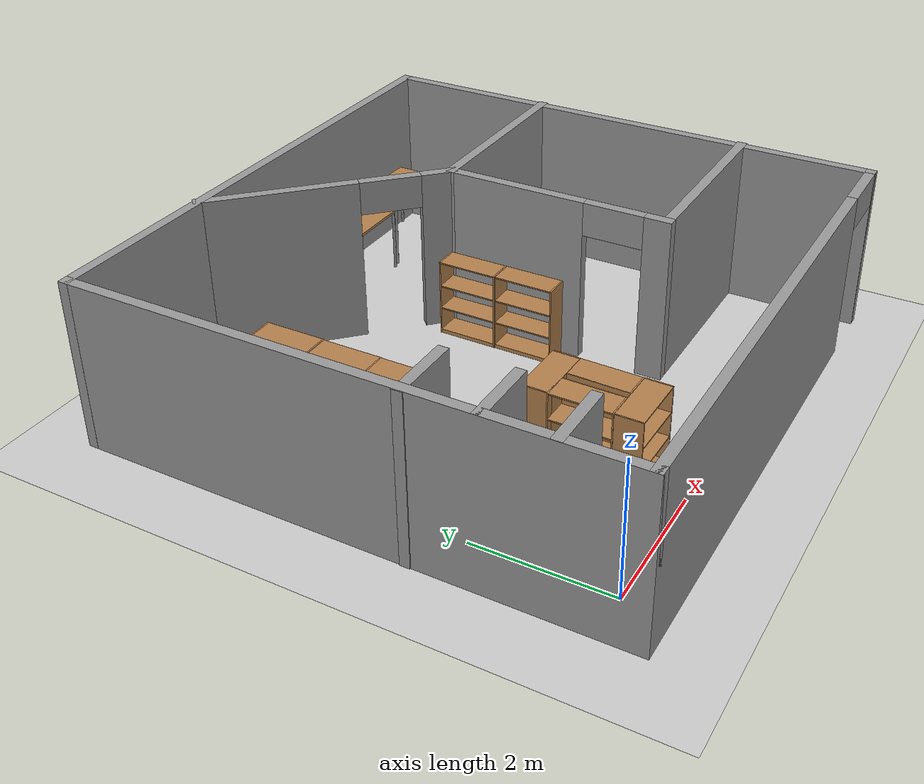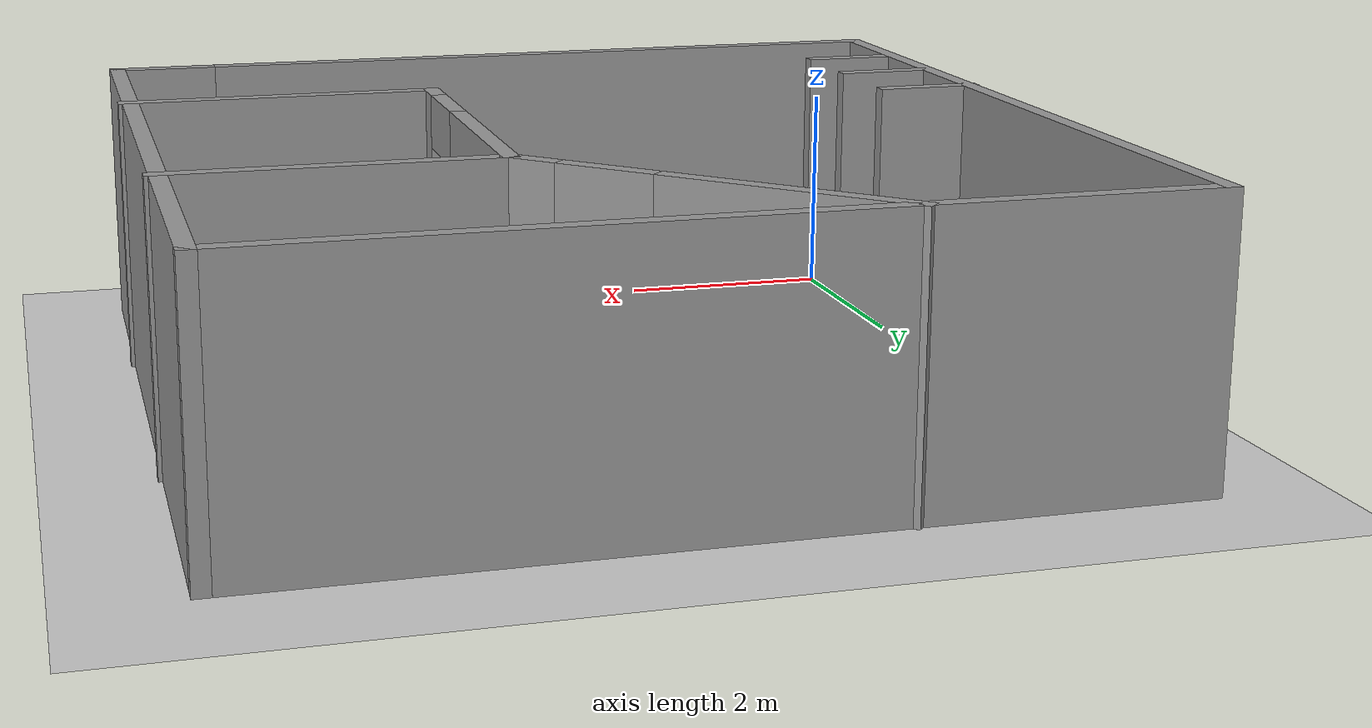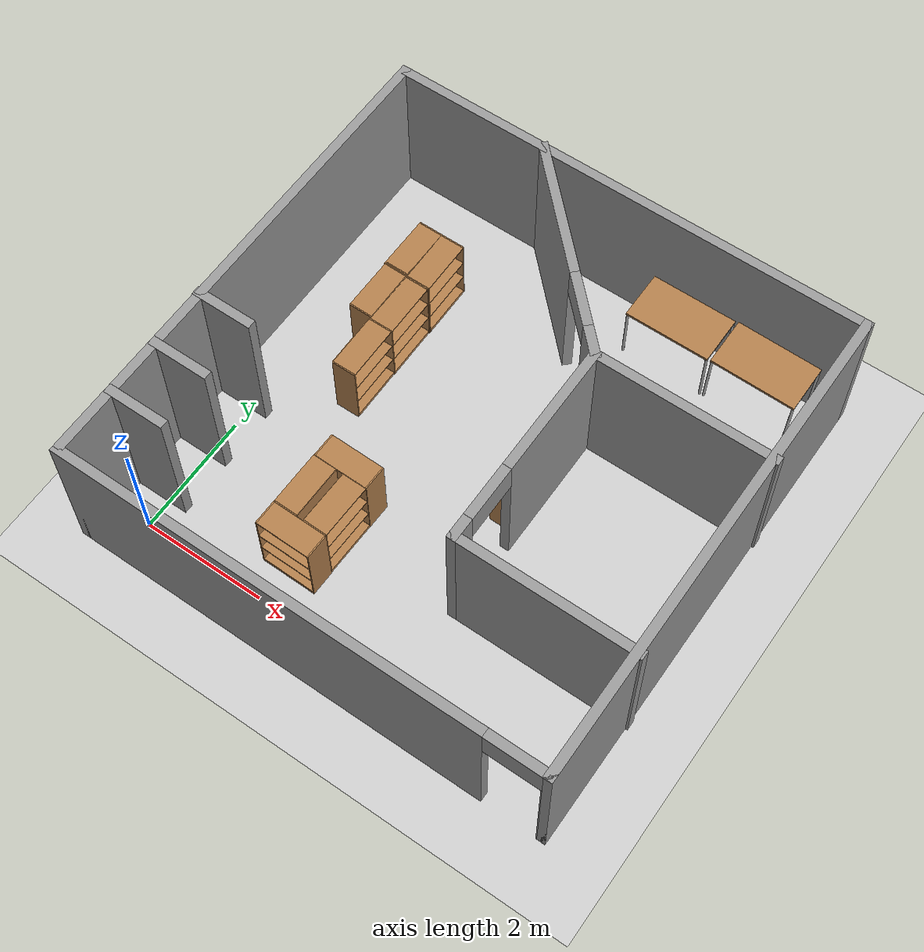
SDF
<sdf version="1.6">
 <world name="default">
  <light name="sun" type="directional">
   <pose>0 0 10 0 -0 0</pose>
   <diffuse>0.8 0.8 0.8 1</diffuse>
   <specular>0.1 0.1 0.1 1</specular>
   <attenuation>
    <range>1000</range>
    <constant>0.9</constant>
    <linear>0.01</linear>
    <quadratic>0.001</quadratic>
   </attenuation>
   <direction>-0.5 0.5 -1</direction>
  </light>
  <model name="ground_plane">
   <static>1</static>
   <link name="link">
    <collision name="collision">
     <geometry><plane><normal>0 0 1</normal><size>100 100</size></plane></geometry>
     <surface><friction><ode><mu>100</mu><mu2>50</mu2></ode></friction></surface>
    </collision>
    <visual name="visual">
     <cast_shadows>0</cast_shadows>
     <geometry><plane><normal>0 0 1</normal><size>100 100</size></plane></geometry>
     <material>
      <script><uri>file://media/materials/scripts/gazebo.material</uri><name>Gazebo/Grey</name></script>
     </material>
    </visual>
   </link>
  </model>
  <gravity>0 0 -9.8</gravity>
  <magnetic_field>6e-06 2.3e-05 -4.2e-05</magnetic_field>
  <atmosphere type="adiabatic"/>
  <physics name="default_physics" default="0" type="ode">
   <max_step_size>0.001</max_step_size>
   <real_time_factor>1</real_time_factor>
   <real_time_update_rate>1000</real_time_update_rate>
  </physics>
  <scene><ambient>0.4 0.4 0.4 1</ambient><background>0.7 0.7 0.7 1</background><shadows>1</shadows></scene>
  <spherical_coordinates>
   <surface_model>EARTH_WGS84</surface_model>
   <latitude_deg>0</latitude_deg>
   <longitude_deg>0</longitude_deg>
   <elevation>0</elevation>
   <heading_deg>0</heading_deg>
  </spherical_coordinates>
  <model name="Untitled_0">
   <pose>3.31265 3.37544 0 0 -0 0</pose>
   <link name="Wall_10">
    <collision name="Wall_10_Collision">
     <geometry><box><size>8 0.15 2.5</size></box></geometry>
     <pose>0 0 1.25 0 -0 0</pose>
    </collision>
    <visual name="Wall_10_Visual">
     <pose>0 0 1.25 0 -0 0</pose>
     <geometry><box><size>8 0.15 2.5</size></box></geometry>
     <material>
      <script><uri>file://media/materials/scripts/gazebo.material</uri><name>Gazebo/Grey</name></script>
      <ambient>1 1 1 1</ambient>
     </material>
    </visual>
    <pose>-0.01726 3.90383 0 0 -0 3.14159</pose>
   </link>
   <link name="Wall_12">
    <collision name="Wall_12_Collision">
     <geometry><box><size>3 0.15 2.5</size></box></geometry>
     <pose>0 0 1.25 0 -0 0</pose>
    </collision>
    <visual name="Wall_12_Visual">
     <pose>0 0 1.25 0 -0 0</pose>
     <geometry><box><size>3 0.15 2.5</size></box></geometry>
     <material>
      <script><uri>file://media/materials/scripts/gazebo.material</uri><name>Gazebo/Grey</name></script>
      <ambient>1 1 1 1</ambient>
     </material>
    </visual>
    <pose>2.51726 1.36952 0 0 -0 3.14159</pose>
   </link>
   <link name="Wall_13">
    <pose>-0.180532 2.64231 0 0 -0 2.35619</pose>
    <visual name="Wall_13_Visual_0">
     <pose>-1.60522 0 1.25 0 -0 0</pose>
     <geometry><box><size>0.539569 0.15 2.5</size></box></geometry>
     <material>
      <script><uri>file://media/materials/scripts/gazebo.material</uri><name>Gazebo/Grey</name></script>
      <ambient>1 1 1 1</ambient>
     </material>
    </visual>
    <collision name="Wall_13_Collision_0">
     <geometry><box><size>0.539569 0.15 2.5</size></box></geometry>
     <pose>-1.60522 0 1.25 0 -0 0</pose>
    </collision>
    <visual name="Wall_13_Visual_1">
     <pose>0.719784 0 1.25 0 -0 0</pose>
     <geometry><box><size>2.31043 0.15 2.5</size></box></geometry>
     <material>
      <script><uri>file://media/materials/scripts/gazebo.material</uri><name>Gazebo/Grey</name></script>
      <ambient>1 1 1 1</ambient>
     </material>
    </visual>
    <collision name="Wall_13_Collision_1">
     <geometry><box><size>2.31043 0.15 2.5</size></box></geometry>
     <pose>0.719784 0 1.25 0 -0 0</pose>
    </collision>
    <visual name="Wall_13_Visual_2">
     <pose>-0.885431 0 2.25 0 -0 0</pose>
     <geometry><box><size>0.9 0.15 0.5</size></box></geometry>
     <material>
      <script><uri>file://media/materials/scripts/gazebo.material</uri><name>Gazebo/Grey</name></script>
      <ambient>1 1 1 1</ambient>
     </material>
    </visual>
    <collision name="Wall_13_Collision_2">
     <geometry><box><size>0.9 0.15 0.5</size></box></geometry>
     <pose>-0.885431 0 2.25 0 -0 0</pose>
    </collision>
   </link>
   <link name="Wall_15">
    <pose>1.09226 -0.30548 0 0 0 -1.5708</pose>
    <visual name="Wall_15_Visual_0">
     <pose>-0.650231 0 1.25 0 -0 0</pose>
     <geometry><box><size>2.19954 0.15 2.5</size></box></geometry>
     <material>
      <script><uri>file://media/materials/scripts/gazebo.material</uri><name>Gazebo/Grey</name></script>
      <ambient>1 1 1 1</ambient>
     </material>
    </visual>
    <collision name="Wall_15_Collision_0">
     <geometry><box><size>2.19954 0.15 2.5</size></box></geometry>
     <pose>-0.650231 0 1.25 0 -0 0</pose>
    </collision>
    <visual name="Wall_15_Visual_1">
     <pose>1.54977 0 1.25 0 -0 0</pose>
     <geometry><box><size>0.400462 0.15 2.5</size></box></geometry>
     <material>
      <script><uri>file://media/materials/scripts/gazebo.material</uri><name>Gazebo/Grey</name></script>
      <ambient>1 1 1 1</ambient>
     </material>
    </visual>
    <collision name="Wall_15_Collision_1">
     <geometry><box><size>0.400462 0.15 2.5</size></box></geometry>
     <pose>1.54977 0 1.25 0 -0 0</pose>
    </collision>
    <visual name="Wall_15_Visual_2">
     <pose>0.899538 0 2.25 0 -0 0</pose>
     <geometry><box><size>0.9 0.15 0.5</size></box></geometry>
     <material>
      <script><uri>file://media/materials/scripts/gazebo.material</uri><name>Gazebo/Grey</name></script>
      <ambient>1 1 1 1</ambient>
     </material>
    </visual>
    <collision name="Wall_15_Collision_2">
     <geometry><box><size>0.9 0.15 0.5</size></box></geometry>
     <pose>0.899538 0 2.25 0 -0 0</pose>
    </collision>
   </link>
   <link name="Wall_16">
    <collision name="Wall_16_Collision">
     <geometry><box><size>3 0.15 2.5</size></box></geometry>
     <pose>0 0 1.25 0 -0 0</pose>
    </collision>
    <visual name="Wall_16_Visual">
     <pose>0 0 1.25 0 -0 0</pose>
     <geometry><box><size>3 0.15 2.5</size></box></geometry>
     <material>
      <script><uri>file://media/materials/scripts/gazebo.material</uri><name>Gazebo/Grey</name></script>
      <ambient>1 1 1 1</ambient>
     </material>
    </visual>
    <pose>2.51726 -1.98048 0 0 -0 0</pose>
   </link>
   <link name="Wall_7">
    <collision name="Wall_7_Collision">
     <geometry><box><size>8 0.15 2.5</size></box></geometry>
     <pose>0 0 1.25 0 -0 0</pose>
    </collision>
    <visual name="Wall_7_Visual">
     <pose>0 0 1.25 0 -0 0</pose>
     <geometry><box><size>8 0.15 2.5</size></box></geometry>
     <material>
      <script><uri>file://media/materials/scripts/gazebo.material</uri><name>Gazebo/Grey</name></script>
      <ambient>1 1 1 1</ambient>
     </material>
    </visual>
    <pose>-3.94226 -0.02117 0 0 0 -1.5708</pose>
   </link>
   <link name="Wall_8">
    <pose>-0.01726 -3.94617 0 0 -0 0</pose>
    <visual name="Wall_8_Visual_0">
     <pose>-0.516773 0 1.25 0 -0 0</pose>
     <geometry><box><size>6.96645 0.15 2.5</size></box></geometry>
     <material>
      <script><uri>file://media/materials/scripts/gazebo.material</uri><name>Gazebo/Grey</name></script>
      <ambient>1 1 1 1</ambient>
     </material>
    </visual>
    <collision name="Wall_8_Collision_0">
     <geometry><box><size>6.96645 0.15 2.5</size></box></geometry>
     <pose>-0.516773 0 1.25 0 -0 0</pose>
    </collision>
    <visual name="Wall_8_Visual_1">
     <pose>3.93323 0 1.25 0 -0 0</pose>
     <geometry><box><size>0.133546 0.15 2.5</size></box></geometry>
     <material>
      <script><uri>file://media/materials/scripts/gazebo.material</uri><name>Gazebo/Grey</name></script>
      <ambient>1 1 1 1</ambient>
     </material>
    </visual>
    <collision name="Wall_8_Collision_1">
     <geometry><box><size>0.133546 0.15 2.5</size></box></geometry>
     <pose>3.93323 0 1.25 0 -0 0</pose>
    </collision>
    <visual name="Wall_8_Visual_2">
     <pose>3.41645 0 2.25 0 -0 0</pose>
     <geometry><box><size>0.9 0.15 0.5</size></box></geometry>
     <material>
      <script><uri>file://media/materials/scripts/gazebo.material</uri><name>Gazebo/Grey</name></script>
      <ambient>1 1 1 1</ambient>
     </material>
    </visual>
    <collision name="Wall_8_Collision_2">
     <geometry><box><size>0.9 0.15 0.5</size></box></geometry>
     <pose>3.41645 0 2.25 0 -0 0</pose>
    </collision>
   </link>
   <link name="Wall_9">
    <collision name="Wall_9_Collision">
     <geometry><box><size>8 0.15 2.5</size></box></geometry>
     <pose>0 0 1.25 0 -0 0</pose>
    </collision>
    <visual name="Wall_9_Visual">
     <pose>0 0 1.25 0 -0 0</pose>
     <geometry><box><size>8 0.15 2.5</size></box></geometry>
     <material>
      <script><uri>file://media/materials/scripts/gazebo.material</uri><name>Gazebo/Grey</name></script>
      <ambient>1 1 1 1</ambient>
     </material>
    </visual>
    <pose>3.90774 -0.02117 0 0 -0 1.5708</pose>
   </link>
   <static>1</static>
  </model>
  <model name="bookshelf">
   <static>1</static>
   <link name="link">
    <inertial><mass>1</mass></inertial>
    <collision name="back">
     <pose>0 0.005 0.6 0 -0 0</pose>
     <geometry><box><size>0.9 0.01 1.2</size></box></geometry>
    </collision>
    <visual name="visual1">
     <pose>0 0.005 0.6 0 -0 0</pose>
     <geometry><box><size>0.9 0.01 1.2</size></box></geometry>
     <material>
      <script><uri>file://media/materials/scripts/gazebo.material</uri><name>Gazebo/Wood</name></script>
     </material>
    </visual>
    <collision name="left_side">
     <pose>0.45 -0.195 0.6 0 -0 0</pose>
     <geometry><box><size>0.02 0.4 1.2</size></box></geometry>
    </collision>
    <visual name="visual2">
     <pose>0.45 -0.195 0.6 0 -0 0</pose>
     <geometry><box><size>0.02 0.4 1.2</size></box></geometry>
     <material>
      <script><uri>file://media/materials/scripts/gazebo.material</uri><name>Gazebo/Wood</name></script>
     </material>
    </visual>
    <collision name="right_side">
     <pose>-0.45 -0.195 0.6 0 -0 0</pose>
     <geometry><box><size>0.02 0.4 1.2</size></box></geometry>
    </collision>
    <visual name="visual3">
     <pose>-0.45 -0.195 0.6 0 -0 0</pose>
     <geometry><box><size>0.02 0.4 1.2</size></box></geometry>
     <material>
      <script><uri>file://media/materials/scripts/gazebo.material</uri><name>Gazebo/Wood</name></script>
     </material>
    </visual>
    <collision name="bottom">
     <pose>0 -0.195 0.03 0 -0 0</pose>
     <geometry><box><size>0.88 0.4 0.06</size></box></geometry>
    </collision>
    <visual name="visual4">
     <pose>0 -0.195 0.03 0 -0 0</pose>
     <geometry><box><size>0.88 0.4 0.06</size></box></geometry>
     <material>
      <script><uri>file://media/materials/scripts/gazebo.material</uri><name>Gazebo/Wood</name></script>
     </material>
    </visual>
    <collision name="top">
     <pose>0 -0.195 1.19 0 -0 0</pose>
     <geometry><box><size>0.88 0.4 0.02</size></box></geometry>
    </collision>
    <visual name="visual5">
     <pose>0 -0.195 1.19 0 -0 0</pose>
     <geometry><box><size>0.88 0.4 0.02</size></box></geometry>
     <material>
      <script><uri>file://media/materials/scripts/gazebo.material</uri><name>Gazebo/Wood</name></script>
     </material>
    </visual>
    <collision name="low_shelf">
     <pose>0 -0.195 0.43 0 -0 0</pose>
     <geometry><box><size>0.88 0.4 0.02</size></box></geometry>
    </collision>
    <visual name="visual6">
     <pose>0 -0.195 0.43 0 -0 0</pose>
     <geometry><box><size>0.88 0.4 0.02</size></box></geometry>
     <material>
      <script><uri>file://media/materials/scripts/gazebo.material</uri><name>Gazebo/Wood</name></script>
     </material>
    </visual>
    <collision name="high_shelf">
     <pose>0 -0.195 0.8 0 -0 0</pose>
     <geometry><box><size>0.88 0.4 0.02</size></box></geometry>
    </collision>
    <visual name="visual7">
     <pose>0 -0.195 0.8 0 -0 0</pose>
     <geometry><box><size>0.88 0.4 0.02</size></box></geometry>
     <material>
      <script><uri>file://media/materials/scripts/gazebo.material</uri><name>Gazebo/Wood</name></script>
     </material>
    </visual>
   </link>
   <pose>1.01117 4.52767 0 0 -0 1.57557</pose>
  </model>
  <model name="bookshelf_clone">
   <static>1</static>
   <link name="link">
    <inertial><mass>1</mass></inertial>
    <collision name="back">
     <pose>0 0.005 0.6 0 -0 0</pose>
     <geometry><box><size>0.9 0.01 1.2</size></box></geometry>
    </collision>
    <visual name="visual1">
     <pose>0 0.005 0.6 0 -0 0</pose>
     <geometry><box><size>0.9 0.01 1.2</size></box></geometry>
     <material>
      <script><uri>file://media/materials/scripts/gazebo.material</uri><name>Gazebo/Wood</name></script>
     </material>
    </visual>
    <collision name="left_side">
     <pose>0.45 -0.195 0.6 0 -0 0</pose>
     <geometry><box><size>0.02 0.4 1.2</size></box></geometry>
    </collision>
    <visual name="visual2">
     <pose>0.45 -0.195 0.6 0 -0 0</pose>
     <geometry><box><size>0.02 0.4 1.2</size></box></geometry>
     <material>
      <script><uri>file://media/materials/scripts/gazebo.material</uri><name>Gazebo/Wood</name></script>
     </material>
    </visual>
    <collision name="right_side">
     <pose>-0.45 -0.195 0.6 0 -0 0</pose>
     <geometry><box><size>0.02 0.4 1.2</size></box></geometry>
    </collision>
    <visual name="visual3">
     <pose>-0.45 -0.195 0.6 0 -0 0</pose>
     <geometry><box><size>0.02 0.4 1.2</size></box></geometry>
     <material>
      <script><uri>file://media/materials/scripts/gazebo.material</uri><name>Gazebo/Wood</name></script>
     </material>
    </visual>
    <collision name="bottom">
     <pose>0 -0.195 0.03 0 -0 0</pose>
     <geometry><box><size>0.88 0.4 0.06</size></box></geometry>
    </collision>
    <visual name="visual4">
     <pose>0 -0.195 0.03 0 -0 0</pose>
     <geometry><box><size>0.88 0.4 0.06</size></box></geometry>
     <material>
      <script><uri>file://media/materials/scripts/gazebo.material</uri><name>Gazebo/Wood</name></script>
     </material>
    </visual>
    <collision name="top">
     <pose>0 -0.195 1.19 0 -0 0</pose>
     <geometry><box><size>0.88 0.4 0.02</size></box></geometry>
    </collision>
    <visual name="visual5">
     <pose>0 -0.195 1.19 0 -0 0</pose>
     <geometry><box><size>0.88 0.4 0.02</size></box></geometry>
     <material>
      <script><uri>file://media/materials/scripts/gazebo.material</uri><name>Gazebo/Wood</name></script>
     </material>
    </visual>
    <collision name="low_shelf">
     <pose>0 -0.195 0.43 0 -0 0</pose>
     <geometry><box><size>0.88 0.4 0.02</size></box></geometry>
    </collision>
    <visual name="visual6">
     <pose>0 -0.195 0.43 0 -0 0</pose>
     <geometry><box><size>0.88 0.4 0.02</size></box></geometry>
     <material>
      <script><uri>file://media/materials/scripts/gazebo.material</uri><name>Gazebo/Wood</name></script>
     </material>
    </visual>
    <collision name="high_shelf">
     <pose>0 -0.195 0.8 0 -0 0</pose>
     <geometry><box><size>0.88 0.4 0.02</size></box></geometry>
    </collision>
    <visual name="visual7">
     <pose>0 -0.195 0.8 0 -0 0</pose>
     <geometry><box><size>0.88 0.4 0.02</size></box></geometry>
     <material>
      <script><uri>file://media/materials/scripts/gazebo.material</uri><name>Gazebo/Wood</name></script>
     </material>
    </visual>
   </link>
   <pose>1.00747 3.62779 0 0 -0 1.57557</pose>
  </model>
  <model name="bookshelf_clone_1">
   <static>1</static>
   <link name="link">
    <inertial><mass>1</mass></inertial>
    <collision name="back">
     <pose>0 0.005 0.6 0 -0 0</pose>
     <geometry><box><size>0.9 0.01 1.2</size></box></geometry>
    </collision>
    <visual name="visual1">
     <pose>0 0.005 0.6 0 -0 0</pose>
     <geometry><box><size>0.9 0.01 1.2</size></box></geometry>
     <material>
      <script><uri>file://media/materials/scripts/gazebo.material</uri><name>Gazebo/Wood</name></script>
     </material>
    </visual>
    <collision name="left_side">
     <pose>0.45 -0.195 0.6 0 -0 0</pose>
     <geometry><box><size>0.02 0.4 1.2</size></box></geometry>
    </collision>
    <visual name="visual2">
     <pose>0.45 -0.195 0.6 0 -0 0</pose>
     <geometry><box><size>0.02 0.4 1.2</size></box></geometry>
     <material>
      <script><uri>file://media/materials/scripts/gazebo.material</uri><name>Gazebo/Wood</name></script>
     </material>
    </visual>
    <collision name="right_side">
     <pose>-0.45 -0.195 0.6 0 -0 0</pose>
     <geometry><box><size>0.02 0.4 1.2</size></box></geometry>
    </collision>
    <visual name="visual3">
     <pose>-0.45 -0.195 0.6 0 -0 0</pose>
     <geometry><box><size>0.02 0.4 1.2</size></box></geometry>
     <material>
      <script><uri>file://media/materials/scripts/gazebo.material</uri><name>Gazebo/Wood</name></script>
     </material>
    </visual>
    <collision name="bottom">
     <pose>0 -0.195 0.03 0 -0 0</pose>
     <geometry><box><size>0.88 0.4 0.06</size></box></geometry>
    </collision>
    <visual name="visual4">
     <pose>0 -0.195 0.03 0 -0 0</pose>
     <geometry><box><size>0.88 0.4 0.06</size></box></geometry>
     <material>
      <script><uri>file://media/materials/scripts/gazebo.material</uri><name>Gazebo/Wood</name></script>
     </material>
    </visual>
    <collision name="top">
     <pose>0 -0.195 1.19 0 -0 0</pose>
     <geometry><box><size>0.88 0.4 0.02</size></box></geometry>
    </collision>
    <visual name="visual5">
     <pose>0 -0.195 1.19 0 -0 0</pose>
     <geometry><box><size>0.88 0.4 0.02</size></box></geometry>
     <material>
      <script><uri>file://media/materials/scripts/gazebo.material</uri><name>Gazebo/Wood</name></script>
     </material>
    </visual>
    <collision name="low_shelf">
     <pose>0 -0.195 0.43 0 -0 0</pose>
     <geometry><box><size>0.88 0.4 0.02</size></box></geometry>
    </collision>
    <visual name="visual6">
     <pose>0 -0.195 0.43 0 -0 0</pose>
     <geometry><box><size>0.88 0.4 0.02</size></box></geometry>
     <material>
      <script><uri>file://media/materials/scripts/gazebo.material</uri><name>Gazebo/Wood</name></script>
     </material>
    </visual>
    <collision name="high_shelf">
     <pose>0 -0.195 0.8 0 -0 0</pose>
     <geometry><box><size>0.88 0.4 0.02</size></box></geometry>
    </collision>
    <visual name="visual7">
     <pose>0 -0.195 0.8 0 -0 0</pose>
     <geometry><box><size>0.88 0.4 0.02</size></box></geometry>
     <material>
      <script><uri>file://media/materials/scripts/gazebo.material</uri><name>Gazebo/Wood</name></script>
     </material>
    </visual>
   </link>
   <pose>1.01781 5.43958 0 0 -0 1.57557</pose>
  </model>
  <model name="bookshelf_clone_2">
   <static>1</static>
   <link name="link">
    <inertial><mass>1</mass></inertial>
    <collision name="back">
     <pose>0 0.005 0.6 0 -0 0</pose>
     <geometry><box><size>0.9 0.01 1.2</size></box></geometry>
    </collision>
    <visual name="visual1">
     <pose>0 0.005 0.6 0 -0 0</pose>
     <geometry><box><size>0.9 0.01 1.2</size></box></geometry>
     <material>
      <script><uri>file://media/materials/scripts/gazebo.material</uri><name>Gazebo/Wood</name></script>
     </material>
    </visual>
    <collision name="left_side">
     <pose>0.45 -0.195 0.6 0 -0 0</pose>
     <geometry><box><size>0.02 0.4 1.2</size></box></geometry>
    </collision>
    <visual name="visual2">
     <pose>0.45 -0.195 0.6 0 -0 0</pose>
     <geometry><box><size>0.02 0.4 1.2</size></box></geometry>
     <material>
      <script><uri>file://media/materials/scripts/gazebo.material</uri><name>Gazebo/Wood</name></script>
     </material>
    </visual>
    <collision name="right_side">
     <pose>-0.45 -0.195 0.6 0 -0 0</pose>
     <geometry><box><size>0.02 0.4 1.2</size></box></geometry>
    </collision>
    <visual name="visual3">
     <pose>-0.45 -0.195 0.6 0 -0 0</pose>
     <geometry><box><size>0.02 0.4 1.2</size></box></geometry>
     <material>
      <script><uri>file://media/materials/scripts/gazebo.material</uri><name>Gazebo/Wood</name></script>
     </material>
    </visual>
    <collision name="bottom">
     <pose>0 -0.195 0.03 0 -0 0</pose>
     <geometry><box><size>0.88 0.4 0.06</size></box></geometry>
    </collision>
    <visual name="visual4">
     <pose>0 -0.195 0.03 0 -0 0</pose>
     <geometry><box><size>0.88 0.4 0.06</size></box></geometry>
     <material>
      <script><uri>file://media/materials/scripts/gazebo.material</uri><name>Gazebo/Wood</name></script>
     </material>
    </visual>
    <collision name="top">
     <pose>0 -0.195 1.19 0 -0 0</pose>
     <geometry><box><size>0.88 0.4 0.02</size></box></geometry>
    </collision>
    <visual name="visual5">
     <pose>0 -0.195 1.19 0 -0 0</pose>
     <geometry><box><size>0.88 0.4 0.02</size></box></geometry>
     <material>
      <script><uri>file://media/materials/scripts/gazebo.material</uri><name>Gazebo/Wood</name></script>
     </material>
    </visual>
    <collision name="low_shelf">
     <pose>0 -0.195 0.43 0 -0 0</pose>
     <geometry><box><size>0.88 0.4 0.02</size></box></geometry>
    </collision>
    <visual name="visual6">
     <pose>0 -0.195 0.43 0 -0 0</pose>
     <geometry><box><size>0.88 0.4 0.02</size></box></geometry>
     <material>
      <script><uri>file://media/materials/scripts/gazebo.material</uri><name>Gazebo/Wood</name></script>
     </material>
    </visual>
    <collision name="high_shelf">
     <pose>0 -0.195 0.8 0 -0 0</pose>
     <geometry><box><size>0.88 0.4 0.02</size></box></geometry>
    </collision>
    <visual name="visual7">
     <pose>0 -0.195 0.8 0 -0 0</pose>
     <geometry><box><size>0.88 0.4 0.02</size></box></geometry>
     <material>
      <script><uri>file://media/materials/scripts/gazebo.material</uri><name>Gazebo/Wood</name></script>
     </material>
    </visual>
   </link>
   <pose>1.00226 5.44052 0 0 0 -1.57535</pose>
  </model>
  <model name="table">
   <static>0</static>
   <link name="link">
    <collision name="surface">
     <pose>0 0 1 0 -0 0</pose>
     <geometry><box><size>1.5 0.8 0.03</size></box></geometry>
     <surface><friction><ode><mu>0.6</mu><mu2>0.6</mu2></ode></friction></surface>
    </collision>
    <visual name="visual1">
     <pose>0 0 1 0 -0 0</pose>
     <geometry><box><size>1.4 0.8 0.04</size></box></geometry>
     <material>
      <script><uri>file://media/materials/scripts/gazebo.material</uri><name>Gazebo/Wood</name></script>
     </material>
    </visual>
    <collision name="front_left_leg">
     <pose>0.68 0.38 0.5 0 -0 0</pose>
     <geometry><cylinder><radius>0.02</radius><length>1</length></cylinder></geometry>
    </collision>
    <visual name="front_left_leg">
     <pose>0.68 0.38 0.5 0 -0 0</pose>
     <geometry><cylinder><radius>0.02</radius><length>1</length></cylinder></geometry>
     <material>
      <script><uri>file://media/materials/scripts/gazebo.material</uri><name>Gazebo/Grey</name></script>
     </material>
    </visual>
    <collision name="front_right_leg">
     <pose>0.68 -0.38 0.5 0 -0 0</pose>
     <geometry><cylinder><radius>0.02</radius><length>1</length></cylinder></geometry>
    </collision>
    <visual name="front_right_leg">
     <pose>0.68 -0.38 0.5 0 -0 0</pose>
     <geometry><cylinder><radius>0.02</radius><length>1</length></cylinder></geometry>
     <material>
      <script><uri>file://media/materials/scripts/gazebo.material</uri><name>Gazebo/Grey</name></script>
     </material>
    </visual>
    <collision name="back_right_leg">
     <pose>-0.68 -0.38 0.5 0 -0 0</pose>
     <geometry><cylinder><radius>0.02</radius><length>1</length></cylinder></geometry>
    </collision>
    <visual name="back_right_leg">
     <pose>-0.68 -0.38 0.5 0 -0 0</pose>
     <geometry><cylinder><radius>0.02</radius><length>1</length></cylinder></geometry>
     <material>
      <script><uri>file://media/materials/scripts/gazebo.material</uri><name>Gazebo/Grey</name></script>
     </material>
    </visual>
    <collision name="back_left_leg">
     <pose>-0.68 0.38 0.5 0 -0 0</pose>
     <geometry><cylinder><radius>0.02</radius><length>1</length></cylinder></geometry>
    </collision>
    <visual name="back_left_leg">
     <pose>-0.68 0.38 0.5 0 -0 0</pose>
     <geometry><cylinder><radius>0.02</radius><length>1</length></cylinder></geometry>
     <material>
      <script><uri>file://media/materials/scripts/gazebo.material</uri><name>Gazebo/Grey</name></script>
     </material>
    </visual>
    <inertial>
     <inertia><ixx>1</ixx><ixy>0</ixy><ixz>0</ixz><iyy>1</iyy><iyz>0</iyz><izz>1</izz></inertia>
     <mass>1</mass>
    </inertial>
   </link>
   <pose>4.67429 6.80423 -9e-06 0 -1e-06 2.9e-05</pose>
  </model>
  <model name="table_clone">
   <static>0</static>
   <link name="link">
    <collision name="surface">
     <pose>0 0 1 0 -0 0</pose>
     <geometry><box><size>1.5 0.8 0.03</size></box></geometry>
     <surface><friction><ode><mu>0.6</mu><mu2>0.6</mu2></ode></friction></surface>
    </collision>
    <visual name="visual1">
     <pose>0 0 1 0 -0 0</pose>
     <geometry><box><size>1.4 0.8 0.04</size></box></geometry>
     <material>
      <script><uri>file://media/materials/scripts/gazebo.material</uri><name>Gazebo/Wood</name></script>
     </material>
    </visual>
    <collision name="front_left_leg">
     <pose>0.68 0.38 0.5 0 -0 0</pose>
     <geometry><cylinder><radius>0.02</radius><length>1</length></cylinder></geometry>
    </collision>
    <visual name="front_left_leg">
     <pose>0.68 0.38 0.5 0 -0 0</pose>
     <geometry><cylinder><radius>0.02</radius><length>1</length></cylinder></geometry>
     <material>
      <script><uri>file://media/materials/scripts/gazebo.material</uri><name>Gazebo/Grey</name></script>
     </material>
    </visual>
    <collision name="front_right_leg">
     <pose>0.68 -0.38 0.5 0 -0 0</pose>
     <geometry><cylinder><radius>0.02</radius><length>1</length></cylinder></geometry>
    </collision>
    <visual name="front_right_leg">
     <pose>0.68 -0.38 0.5 0 -0 0</pose>
     <geometry><cylinder><radius>0.02</radius><length>1</length></cylinder></geometry>
     <material>
      <script><uri>file://media/materials/scripts/gazebo.material</uri><name>Gazebo/Grey</name></script>
     </material>
    </visual>
    <collision name="back_right_leg">
     <pose>-0.68 -0.38 0.5 0 -0 0</pose>
     <geometry><cylinder><radius>0.02</radius><length>1</length></cylinder></geometry>
    </collision>
    <visual name="back_right_leg">
     <pose>-0.68 -0.38 0.5 0 -0 0</pose>
     <geometry><cylinder><radius>0.02</radius><length>1</length></cylinder></geometry>
     <material>
      <script><uri>file://media/materials/scripts/gazebo.material</uri><name>Gazebo/Grey</name></script>
     </material>
    </visual>
    <collision name="back_left_leg">
     <pose>-0.68 0.38 0.5 0 -0 0</pose>
     <geometry><cylinder><radius>0.02</radius><length>1</length></cylinder></geometry>
    </collision>
    <visual name="back_left_leg">
     <pose>-0.68 0.38 0.5 0 -0 0</pose>
     <geometry><cylinder><radius>0.02</radius><length>1</length></cylinder></geometry>
     <material>
      <script><uri>file://media/materials/scripts/gazebo.material</uri><name>Gazebo/Grey</name></script>
     </material>
    </visual>
    <inertial>
     <inertia><ixx>1</ixx><ixy>0</ixy><ixz>0</ixz><iyy>1</iyy><iyz>0</iyz><izz>1</izz></inertia>
     <mass>1</mass>
    </inertial>
   </link>
   <pose>6.10351 6.80349 0.015105 -3e-06 0.021581 3e-05</pose>
  </model>
  <model name="one_unit">
   <pose>-0.200285 0.527581 0 0 -0 0</pose>
   <link name="Wall_18">
    <collision name="Wall_18_Collision">
     <geometry><box><size>1 0.15 2.5</size></box></geometry>
     <pose>0 0 1.25 0 -0 0</pose>
    </collision>
    <visual name="Wall_18_Visual">
     <pose>0 0 1.25 0 -0 0</pose>
     <geometry><box><size>1 0.15 2.5</size></box></geometry>
     <material>
      <script><uri>file://media/materials/scripts/gazebo.material</uri><name>Gazebo/Grey</name></script>
      <ambient>1 1 1 1</ambient>
     </material>
    </visual>
   </link>
   <static>1</static>
  </model>
  <model name="one_unit_clone">
   <pose>-0.201315 1.45538 0 0 -0 0</pose>
   <link name="Wall_18">
    <collision name="Wall_18_Collision">
     <geometry><box><size>1 0.15 2.5</size></box></geometry>
     <pose>0 0 1.25 0 -0 0</pose>
    </collision>
    <visual name="Wall_18_Visual">
     <pose>0 0 1.25 0 -0 0</pose>
     <geometry><box><size>1 0.15 2.5</size></box></geometry>
     <material>
      <script><uri>file://media/materials/scripts/gazebo.material</uri><name>Gazebo/Grey</name></script>
      <ambient>1 1 1 1</ambient>
     </material>
    </visual>
   </link>
   <static>1</static>
  </model>
  <model name="one_unit_clone_0">
   <pose>-0.218967 2.43556 0 0 -0 0</pose>
   <link name="Wall_18">
    <collision name="Wall_18_Collision">
     <geometry><box><size>1 0.15 2.5</size></box></geometry>
     <pose>0 0 1.25 0 -0 0</pose>
    </collision>
    <visual name="Wall_18_Visual">
     <pose>0 0 1.25 0 -0 0</pose>
     <geometry><box><size>1 0.15 2.5</size></box></geometry>
     <material>
      <script><uri>file://media/materials/scripts/gazebo.material</uri><name>Gazebo/Grey</name></script>
      <ambient>1 1 1 1</ambient>
     </material>
    </visual>
   </link>
   <static>1</static>
  </model>
  <model name="bookshelf_clone_2_clone">
   <static>1</static>
   <link name="link">
    <inertial><mass>1</mass></inertial>
    <collision name="back">
     <pose>0 0.005 0.6 0 -0 0</pose>
     <geometry><box><size>0.9 0.01 1.2</size></box></geometry>
    </collision>
    <visual name="visual1">
     <pose>0 0.005 0.6 0 -0 0</pose>
     <geometry><box><size>0.9 0.01 1.2</size></box></geometry>
     <material>
      <script><uri>file://media/materials/scripts/gazebo.material</uri><name>Gazebo/Wood</name></script>
     </material>
    </visual>
    <collision name="left_side">
     <pose>0.45 -0.195 0.6 0 -0 0</pose>
     <geometry><box><size>0.02 0.4 1.2</size></box></geometry>
    </collision>
    <visual name="visual2">
     <pose>0.45 -0.195 0.6 0 -0 0</pose>
     <geometry><box><size>0.02 0.4 1.2</size></box></geometry>
     <material>
      <script><uri>file://media/materials/scripts/gazebo.material</uri><name>Gazebo/Wood</name></script>
     </material>
    </visual>
    <collision name="right_side">
     <pose>-0.45 -0.195 0.6 0 -0 0</pose>
     <geometry><box><size>0.02 0.4 1.2</size></box></geometry>
    </collision>
    <visual name="visual3">
     <pose>-0.45 -0.195 0.6 0 -0 0</pose>
     <geometry><box><size>0.02 0.4 1.2</size></box></geometry>
     <material>
      <script><uri>file://media/materials/scripts/gazebo.material</uri><name>Gazebo/Wood</name></script>
     </material>
    </visual>
    <collision name="bottom">
     <pose>0 -0.195 0.03 0 -0 0</pose>
     <geometry><box><size>0.88 0.4 0.06</size></box></geometry>
    </collision>
    <visual name="visual4">
     <pose>0 -0.195 0.03 0 -0 0</pose>
     <geometry><box><size>0.88 0.4 0.06</size></box></geometry>
     <material>
      <script><uri>file://media/materials/scripts/gazebo.material</uri><name>Gazebo/Wood</name></script>
     </material>
    </visual>
    <collision name="top">
     <pose>0 -0.195 1.19 0 -0 0</pose>
     <geometry><box><size>0.88 0.4 0.02</size></box></geometry>
    </collision>
    <visual name="visual5">
     <pose>0 -0.195 1.19 0 -0 0</pose>
     <geometry><box><size>0.88 0.4 0.02</size></box></geometry>
     <material>
      <script><uri>file://media/materials/scripts/gazebo.material</uri><name>Gazebo/Wood</name></script>
     </material>
    </visual>
    <collision name="low_shelf">
     <pose>0 -0.195 0.43 0 -0 0</pose>
     <geometry><box><size>0.88 0.4 0.02</size></box></geometry>
    </collision>
    <visual name="visual6">
     <pose>0 -0.195 0.43 0 -0 0</pose>
     <geometry><box><size>0.88 0.4 0.02</size></box></geometry>
     <material>
      <script><uri>file://media/materials/scripts/gazebo.material</uri><name>Gazebo/Wood</name></script>
     </material>
    </visual>
    <collision name="high_shelf">
     <pose>0 -0.195 0.8 0 -0 0</pose>
     <geometry><box><size>0.88 0.4 0.02</size></box></geometry>
    </collision>
    <visual name="visual7">
     <pose>0 -0.195 0.8 0 -0 0</pose>
     <geometry><box><size>0.88 0.4 0.02</size></box></geometry>
     <material>
      <script><uri>file://media/materials/scripts/gazebo.material</uri><name>Gazebo/Wood</name></script>
     </material>
    </visual>
   </link>
   <pose>1.01297 4.56499 0 0 0 -1.57535</pose>
  </model>
  <model name="bookshelf_clone_2_clone_0">
   <static>1</static>
   <link name="link">
    <inertial><mass>1</mass></inertial>
    <collision name="back">
     <pose>0 0.005 0.6 0 -0 0</pose>
     <geometry><box><size>0.9 0.01 1.2</size></box></geometry>
    </collision>
    <visual name="visual1">
     <pose>0 0.005 0.6 0 -0 0</pose>
     <geometry><box><size>0.9 0.01 1.2</size></box></geometry>
     <material>
      <script><uri>file://media/materials/scripts/gazebo.material</uri><name>Gazebo/Wood</name></script>
     </material>
    </visual>
    <collision name="left_side">
     <pose>0.45 -0.195 0.6 0 -0 0</pose>
     <geometry><box><size>0.02 0.4 1.2</size></box></geometry>
    </collision>
    <visual name="visual2">
     <pose>0.45 -0.195 0.6 0 -0 0</pose>
     <geometry><box><size>0.02 0.4 1.2</size></box></geometry>
     <material>
      <script><uri>file://media/materials/scripts/gazebo.material</uri><name>Gazebo/Wood</name></script>
     </material>
    </visual>
    <collision name="right_side">
     <pose>-0.45 -0.195 0.6 0 -0 0</pose>
     <geometry><box><size>0.02 0.4 1.2</size></box></geometry>
    </collision>
    <visual name="visual3">
     <pose>-0.45 -0.195 0.6 0 -0 0</pose>
     <geometry><box><size>0.02 0.4 1.2</size></box></geometry>
     <material>
      <script><uri>file://media/materials/scripts/gazebo.material</uri><name>Gazebo/Wood</name></script>
     </material>
    </visual>
    <collision name="bottom">
     <pose>0 -0.195 0.03 0 -0 0</pose>
     <geometry><box><size>0.88 0.4 0.06</size></box></geometry>
    </collision>
    <visual name="visual4">
     <pose>0 -0.195 0.03 0 -0 0</pose>
     <geometry><box><size>0.88 0.4 0.06</size></box></geometry>
     <material>
      <script><uri>file://media/materials/scripts/gazebo.material</uri><name>Gazebo/Wood</name></script>
     </material>
    </visual>
    <collision name="top">
     <pose>0 -0.195 1.19 0 -0 0</pose>
     <geometry><box><size>0.88 0.4 0.02</size></box></geometry>
    </collision>
    <visual name="visual5">
     <pose>0 -0.195 1.19 0 -0 0</pose>
     <geometry><box><size>0.88 0.4 0.02</size></box></geometry>
     <material>
      <script><uri>file://media/materials/scripts/gazebo.material</uri><name>Gazebo/Wood</name></script>
     </material>
    </visual>
    <collision name="low_shelf">
     <pose>0 -0.195 0.43 0 -0 0</pose>
     <geometry><box><size>0.88 0.4 0.02</size></box></geometry>
    </collision>
    <visual name="visual6">
     <pose>0 -0.195 0.43 0 -0 0</pose>
     <geometry><box><size>0.88 0.4 0.02</size></box></geometry>
     <material>
      <script><uri>file://media/materials/scripts/gazebo.material</uri><name>Gazebo/Wood</name></script>
     </material>
    </visual>
    <collision name="high_shelf">
     <pose>0 -0.195 0.8 0 -0 0</pose>
     <geometry><box><size>0.88 0.4 0.02</size></box></geometry>
    </collision>
    <visual name="visual7">
     <pose>0 -0.195 0.8 0 -0 0</pose>
     <geometry><box><size>0.88 0.4 0.02</size></box></geometry>
     <material>
      <script><uri>file://media/materials/scripts/gazebo.material</uri><name>Gazebo/Wood</name></script>
     </material>
    </visual>
   </link>
   <pose>4.35426 4.26537 0 0 0 -1.57535</pose>
  </model>
  <model name="bookshelf_clone_2_clone_1">
   <static>1</static>
   <link name="link">
    <inertial><mass>1</mass></inertial>
    <collision name="back">
     <pose>0 0.005 0.6 0 -0 0</pose>
     <geometry><box><size>0.9 0.01 1.2</size></box></geometry>
    </collision>
    <visual name="visual1">
     <pose>0 0.005 0.6 0 -0 0</pose>
     <geometry><box><size>0.9 0.01 1.2</size></box></geometry>
     <material>
      <script><uri>file://media/materials/scripts/gazebo.material</uri><name>Gazebo/Wood</name></script>
     </material>
    </visual>
    <collision name="left_side">
     <pose>0.45 -0.195 0.6 0 -0 0</pose>
     <geometry><box><size>0.02 0.4 1.2</size></box></geometry>
    </collision>
    <visual name="visual2">
     <pose>0.45 -0.195 0.6 0 -0 0</pose>
     <geometry><box><size>0.02 0.4 1.2</size></box></geometry>
     <material>
      <script><uri>file://media/materials/scripts/gazebo.material</uri><name>Gazebo/Wood</name></script>
     </material>
    </visual>
    <collision name="right_side">
     <pose>-0.45 -0.195 0.6 0 -0 0</pose>
     <geometry><box><size>0.02 0.4 1.2</size></box></geometry>
    </collision>
    <visual name="visual3">
     <pose>-0.45 -0.195 0.6 0 -0 0</pose>
     <geometry><box><size>0.02 0.4 1.2</size></box></geometry>
     <material>
      <script><uri>file://media/materials/scripts/gazebo.material</uri><name>Gazebo/Wood</name></script>
     </material>
    </visual>
    <collision name="bottom">
     <pose>0 -0.195 0.03 0 -0 0</pose>
     <geometry><box><size>0.88 0.4 0.06</size></box></geometry>
    </collision>
    <visual name="visual4">
     <pose>0 -0.195 0.03 0 -0 0</pose>
     <geometry><box><size>0.88 0.4 0.06</size></box></geometry>
     <material>
      <script><uri>file://media/materials/scripts/gazebo.material</uri><name>Gazebo/Wood</name></script>
     </material>
    </visual>
    <collision name="top">
     <pose>0 -0.195 1.19 0 -0 0</pose>
     <geometry><box><size>0.88 0.4 0.02</size></box></geometry>
    </collision>
    <visual name="visual5">
     <pose>0 -0.195 1.19 0 -0 0</pose>
     <geometry><box><size>0.88 0.4 0.02</size></box></geometry>
     <material>
      <script><uri>file://media/materials/scripts/gazebo.material</uri><name>Gazebo/Wood</name></script>
     </material>
    </visual>
    <collision name="low_shelf">
     <pose>0 -0.195 0.43 0 -0 0</pose>
     <geometry><box><size>0.88 0.4 0.02</size></box></geometry>
    </collision>
    <visual name="visual6">
     <pose>0 -0.195 0.43 0 -0 0</pose>
     <geometry><box><size>0.88 0.4 0.02</size></box></geometry>
     <material>
      <script><uri>file://media/materials/scripts/gazebo.material</uri><name>Gazebo/Wood</name></script>
     </material>
    </visual>
    <collision name="high_shelf">
     <pose>0 -0.195 0.8 0 -0 0</pose>
     <geometry><box><size>0.88 0.4 0.02</size></box></geometry>
    </collision>
    <visual name="visual7">
     <pose>0 -0.195 0.8 0 -0 0</pose>
     <geometry><box><size>0.88 0.4 0.02</size></box></geometry>
     <material>
      <script><uri>file://media/materials/scripts/gazebo.material</uri><name>Gazebo/Wood</name></script>
     </material>
    </visual>
   </link>
   <pose>4.3553 3.35235 0 0 0 -1.57535</pose>
  </model>
  <model name="bookshelf_clone_clone">
   <static>1</static>
   <link name="link">
    <inertial><mass>1</mass></inertial>
    <collision name="back">
     <pose>0 0.005 0.6 0 -0 0</pose>
     <geometry><box><size>0.9 0.01 1.2</size></box></geometry>
    </collision>
    <visual name="visual1">
     <pose>0 0.005 0.6 0 -0 0</pose>
     <geometry><box><size>0.9 0.01 1.2</size></box></geometry>
     <material>
      <script><uri>file://media/materials/scripts/gazebo.material</uri><name>Gazebo/Wood</name></script>
     </material>
    </visual>
    <collision name="left_side">
     <pose>0.45 -0.195 0.6 0 -0 0</pose>
     <geometry><box><size>0.02 0.4 1.2</size></box></geometry>
    </collision>
    <visual name="visual2">
     <pose>0.45 -0.195 0.6 0 -0 0</pose>
     <geometry><box><size>0.02 0.4 1.2</size></box></geometry>
     <material>
      <script><uri>file://media/materials/scripts/gazebo.material</uri><name>Gazebo/Wood</name></script>
     </material>
    </visual>
    <collision name="right_side">
     <pose>-0.45 -0.195 0.6 0 -0 0</pose>
     <geometry><box><size>0.02 0.4 1.2</size></box></geometry>
    </collision>
    <visual name="visual3">
     <pose>-0.45 -0.195 0.6 0 -0 0</pose>
     <geometry><box><size>0.02 0.4 1.2</size></box></geometry>
     <material>
      <script><uri>file://media/materials/scripts/gazebo.material</uri><name>Gazebo/Wood</name></script>
     </material>
    </visual>
    <collision name="bottom">
     <pose>0 -0.195 0.03 0 -0 0</pose>
     <geometry><box><size>0.88 0.4 0.06</size></box></geometry>
    </collision>
    <visual name="visual4">
     <pose>0 -0.195 0.03 0 -0 0</pose>
     <geometry><box><size>0.88 0.4 0.06</size></box></geometry>
     <material>
      <script><uri>file://media/materials/scripts/gazebo.material</uri><name>Gazebo/Wood</name></script>
     </material>
    </visual>
    <collision name="top">
     <pose>0 -0.195 1.19 0 -0 0</pose>
     <geometry><box><size>0.88 0.4 0.02</size></box></geometry>
    </collision>
    <visual name="visual5">
     <pose>0 -0.195 1.19 0 -0 0</pose>
     <geometry><box><size>0.88 0.4 0.02</size></box></geometry>
     <material>
      <script><uri>file://media/materials/scripts/gazebo.material</uri><name>Gazebo/Wood</name></script>
     </material>
    </visual>
    <collision name="low_shelf">
     <pose>0 -0.195 0.43 0 -0 0</pose>
     <geometry><box><size>0.88 0.4 0.02</size></box></geometry>
    </collision>
    <visual name="visual6">
     <pose>0 -0.195 0.43 0 -0 0</pose>
     <geometry><box><size>0.88 0.4 0.02</size></box></geometry>
     <material>
      <script><uri>file://media/materials/scripts/gazebo.material</uri><name>Gazebo/Wood</name></script>
     </material>
    </visual>
    <collision name="high_shelf">
     <pose>0 -0.195 0.8 0 -0 0</pose>
     <geometry><box><size>0.88 0.4 0.02</size></box></geometry>
    </collision>
    <visual name="visual7">
     <pose>0 -0.195 0.8 0 -0 0</pose>
     <geometry><box><size>0.88 0.4 0.02</size></box></geometry>
     <material>
      <script><uri>file://media/materials/scripts/gazebo.material</uri><name>Gazebo/Wood</name></script>
     </material>
    </visual>
   </link>
   <pose>2.15343 0.893916 0 0 0 -0.01421</pose>
  </model>
  <model name="bookshelf_clone_clone_clone">
   <static>1</static>
   <link name="link">
    <inertial><mass>1</mass></inertial>
    <collision name="back">
     <pose>0 0.005 0.6 0 -0 0</pose>
     <geometry><box><size>0.9 0.01 1.2</size></box></geometry>
    </collision>
    <visual name="visual1">
     <pose>0 0.005 0.6 0 -0 0</pose>
     <geometry><box><size>0.9 0.01 1.2</size></box></geometry>
     <material>
      <script><uri>file://media/materials/scripts/gazebo.material</uri><name>Gazebo/Wood</name></script>
     </material>
    </visual>
    <collision name="left_side">
     <pose>0.45 -0.195 0.6 0 -0 0</pose>
     <geometry><box><size>0.02 0.4 1.2</size></box></geometry>
    </collision>
    <visual name="visual2">
     <pose>0.45 -0.195 0.6 0 -0 0</pose>
     <geometry><box><size>0.02 0.4 1.2</size></box></geometry>
     <material>
      <script><uri>file://media/materials/scripts/gazebo.material</uri><name>Gazebo/Wood</name></script>
     </material>
    </visual>
    <collision name="right_side">
     <pose>-0.45 -0.195 0.6 0 -0 0</pose>
     <geometry><box><size>0.02 0.4 1.2</size></box></geometry>
    </collision>
    <visual name="visual3">
     <pose>-0.45 -0.195 0.6 0 -0 0</pose>
     <geometry><box><size>0.02 0.4 1.2</size></box></geometry>
     <material>
      <script><uri>file://media/materials/scripts/gazebo.material</uri><name>Gazebo/Wood</name></script>
     </material>
    </visual>
    <collision name="bottom">
     <pose>0 -0.195 0.03 0 -0 0</pose>
     <geometry><box><size>0.88 0.4 0.06</size></box></geometry>
    </collision>
    <visual name="visual4">
     <pose>0 -0.195 0.03 0 -0 0</pose>
     <geometry><box><size>0.88 0.4 0.06</size></box></geometry>
     <material>
      <script><uri>file://media/materials/scripts/gazebo.material</uri><name>Gazebo/Wood</name></script>
     </material>
    </visual>
    <collision name="top">
     <pose>0 -0.195 1.19 0 -0 0</pose>
     <geometry><box><size>0.88 0.4 0.02</size></box></geometry>
    </collision>
    <visual name="visual5">
     <pose>0 -0.195 1.19 0 -0 0</pose>
     <geometry><box><size>0.88 0.4 0.02</size></box></geometry>
     <material>
      <script><uri>file://media/materials/scripts/gazebo.material</uri><name>Gazebo/Wood</name></script>
     </material>
    </visual>
    <collision name="low_shelf">
     <pose>0 -0.195 0.43 0 -0 0</pose>
     <geometry><box><size>0.88 0.4 0.02</size></box></geometry>
    </collision>
    <visual name="visual6">
     <pose>0 -0.195 0.43 0 -0 0</pose>
     <geometry><box><size>0.88 0.4 0.02</size></box></geometry>
     <material>
      <script><uri>file://media/materials/scripts/gazebo.material</uri><name>Gazebo/Wood</name></script>
     </material>
    </visual>
    <collision name="high_shelf">
     <pose>0 -0.195 0.8 0 -0 0</pose>
     <geometry><box><size>0.88 0.4 0.02</size></box></geometry>
    </collision>
    <visual name="visual7">
     <pose>0 -0.195 0.8 0 -0 0</pose>
     <geometry><box><size>0.88 0.4 0.02</size></box></geometry>
     <material>
      <script><uri>file://media/materials/scripts/gazebo.material</uri><name>Gazebo/Wood</name></script>
     </material>
    </visual>
   </link>
   <pose>2.1705 1.81031 0 0 -0 3.12332</pose>
  </model>
  <model name="bookshelf_clone_clone_0">
   <static>1</static>
   <link name="link">
    <inertial><mass>1</mass></inertial>
    <collision name="back">
     <pose>0 0.005 0.6 0 -0 0</pose>
     <geometry><box><size>0.9 0.01 1.2</size></box></geometry>
    </collision>
    <visual name="visual1">
     <pose>0 0.005 0.6 0 -0 0</pose>
     <geometry><box><size>0.9 0.01 1.2</size></box></geometry>
     <material>
      <script><uri>file://media/materials/scripts/gazebo.material</uri><name>Gazebo/Wood</name></script>
     </material>
    </visual>
    <collision name="left_side">
     <pose>0.45 -0.195 0.6 0 -0 0</pose>
     <geometry><box><size>0.02 0.4 1.2</size></box></geometry>
    </collision>
    <visual name="visual2">
     <pose>0.45 -0.195 0.6 0 -0 0</pose>
     <geometry><box><size>0.02 0.4 1.2</size></box></geometry>
     <material>
      <script><uri>file://media/materials/scripts/gazebo.material</uri><name>Gazebo/Wood</name></script>
     </material>
    </visual>
    <collision name="right_side">
     <pose>-0.45 -0.195 0.6 0 -0 0</pose>
     <geometry><box><size>0.02 0.4 1.2</size></box></geometry>
    </collision>
    <visual name="visual3">
     <pose>-0.45 -0.195 0.6 0 -0 0</pose>
     <geometry><box><size>0.02 0.4 1.2</size></box></geometry>
     <material>
      <script><uri>file://media/materials/scripts/gazebo.material</uri><name>Gazebo/Wood</name></script>
     </material>
    </visual>
    <collision name="bottom">
     <pose>0 -0.195 0.03 0 -0 0</pose>
     <geometry><box><size>0.88 0.4 0.06</size></box></geometry>
    </collision>
    <visual name="visual4">
     <pose>0 -0.195 0.03 0 -0 0</pose>
     <geometry><box><size>0.88 0.4 0.06</size></box></geometry>
     <material>
      <script><uri>file://media/materials/scripts/gazebo.material</uri><name>Gazebo/Wood</name></script>
     </material>
    </visual>
    <collision name="top">
     <pose>0 -0.195 1.19 0 -0 0</pose>
     <geometry><box><size>0.88 0.4 0.02</size></box></geometry>
    </collision>
    <visual name="visual5">
     <pose>0 -0.195 1.19 0 -0 0</pose>
     <geometry><box><size>0.88 0.4 0.02</size></box></geometry>
     <material>
      <script><uri>file://media/materials/scripts/gazebo.material</uri><name>Gazebo/Wood</name></script>
     </material>
    </visual>
    <collision name="low_shelf">
     <pose>0 -0.195 0.43 0 -0 0</pose>
     <geometry><box><size>0.88 0.4 0.02</size></box></geometry>
    </collision>
    <visual name="visual6">
     <pose>0 -0.195 0.43 0 -0 0</pose>
     <geometry><box><size>0.88 0.4 0.02</size></box></geometry>
     <material>
      <script><uri>file://media/materials/scripts/gazebo.material</uri><name>Gazebo/Wood</name></script>
     </material>
    </visual>
    <collision name="high_shelf">
     <pose>0 -0.195 0.8 0 -0 0</pose>
     <geometry><box><size>0.88 0.4 0.02</size></box></geometry>
    </collision>
    <visual name="visual7">
     <pose>0 -0.195 0.8 0 -0 0</pose>
     <geometry><box><size>0.88 0.4 0.02</size></box></geometry>
     <material>
      <script><uri>file://media/materials/scripts/gazebo.material</uri><name>Gazebo/Wood</name></script>
     </material>
    </visual>
   </link>
   <pose>2.22227 1.36008 0 0 -0 1.54882</pose>
  </model>
  <model name="bookshelf_clone_2_clone_clone">
   <static>1</static>
   <link name="link">
    <inertial><mass>1</mass></inertial>
    <collision name="back">
     <pose>0 0.005 0.6 0 -0 0</pose>
     <geometry><box><size>0.9 0.01 1.2</size></box></geometry>
    </collision>
    <visual name="visual1">
     <pose>0 0.005 0.6 0 -0 0</pose>
     <geometry><box><size>0.9 0.01 1.2</size></box></geometry>
     <material>
      <script><uri>file://media/materials/scripts/gazebo.material</uri><name>Gazebo/Wood</name></script>
     </material>
    </visual>
    <collision name="left_side">
     <pose>0.45 -0.195 0.6 0 -0 0</pose>
     <geometry><box><size>0.02 0.4 1.2</size></box></geometry>
    </collision>
    <visual name="visual2">
     <pose>0.45 -0.195 0.6 0 -0 0</pose>
     <geometry><box><size>0.02 0.4 1.2</size></box></geometry>
     <material>
      <script><uri>file://media/materials/scripts/gazebo.material</uri><name>Gazebo/Wood</name></script>
     </material>
    </visual>
    <collision name="right_side">
     <pose>-0.45 -0.195 0.6 0 -0 0</pose>
     <geometry><box><size>0.02 0.4 1.2</size></box></geometry>
    </collision>
    <visual name="visual3">
     <pose>-0.45 -0.195 0.6 0 -0 0</pose>
     <geometry><box><size>0.02 0.4 1.2</size></box></geometry>
     <material>
      <script><uri>file://media/materials/scripts/gazebo.material</uri><name>Gazebo/Wood</name></script>
     </material>
    </visual>
    <collision name="bottom">
     <pose>0 -0.195 0.03 0 -0 0</pose>
     <geometry><box><size>0.88 0.4 0.06</size></box></geometry>
    </collision>
    <visual name="visual4">
     <pose>0 -0.195 0.03 0 -0 0</pose>
     <geometry><box><size>0.88 0.4 0.06</size></box></geometry>
     <material>
      <script><uri>file://media/materials/scripts/gazebo.material</uri><name>Gazebo/Wood</name></script>
     </material>
    </visual>
    <collision name="top">
     <pose>0 -0.195 1.19 0 -0 0</pose>
     <geometry><box><size>0.88 0.4 0.02</size></box></geometry>
    </collision>
    <visual name="visual5">
     <pose>0 -0.195 1.19 0 -0 0</pose>
     <geometry><box><size>0.88 0.4 0.02</size></box></geometry>
     <material>
      <script><uri>file://media/materials/scripts/gazebo.material</uri><name>Gazebo/Wood</name></script>
     </material>
    </visual>
    <collision name="low_shelf">
     <pose>0 -0.195 0.43 0 -0 0</pose>
     <geometry><box><size>0.88 0.4 0.02</size></box></geometry>
    </collision>
    <visual name="visual6">
     <pose>0 -0.195 0.43 0 -0 0</pose>
     <geometry><box><size>0.88 0.4 0.02</size></box></geometry>
     <material>
      <script><uri>file://media/materials/scripts/gazebo.material</uri><name>Gazebo/Wood</name></script>
     </material>
    </visual>
    <collision name="high_shelf">
     <pose>0 -0.195 0.8 0 -0 0</pose>
     <geometry><box><size>0.88 0.4 0.02</size></box></geometry>
    </collision>
    <visual name="visual7">
     <pose>0 -0.195 0.8 0 -0 0</pose>
     <geometry><box><size>0.88 0.4 0.02</size></box></geometry>
     <material>
      <script><uri>file://media/materials/scripts/gazebo.material</uri><name>Gazebo/Wood</name></script>
     </material>
    </visual>
   </link>
   <pose>2.09524 1.36366 0 0 0 -1.58201</pose>
  </model>
 </world>
</sdf>
